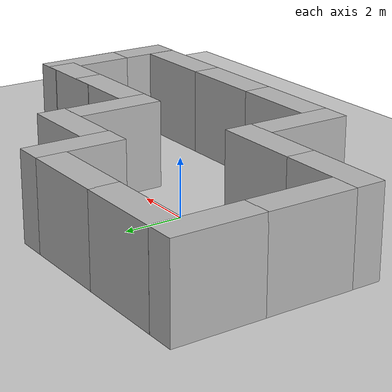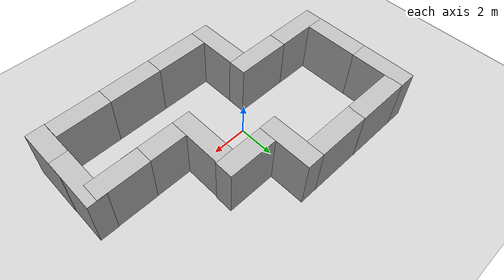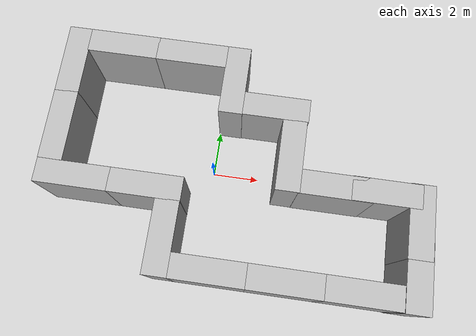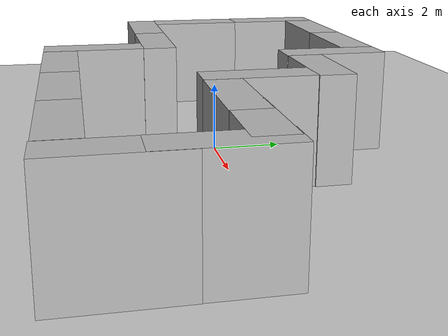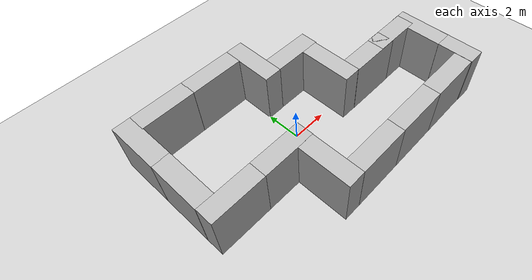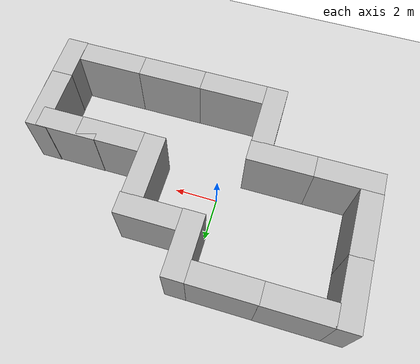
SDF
<sdf version="1.7">
 <world name="default">
  <light name="sun" type="directional">
   <pose>0 0 10 0 -0 0</pose>
   <diffuse>0.8 0.8 0.8 1</diffuse>
   <specular>0.2 0.2 0.2 1</specular>
   <attenuation>
    <range>1000</range>
    <constant>0.9</constant>
    <linear>0.01</linear>
    <quadratic>0.001</quadratic>
   </attenuation>
   <direction>-0.5 0.1 -0.9</direction>
   <spot><inner_angle>0</inner_angle><outer_angle>0</outer_angle><falloff>0</falloff></spot>
  </light>
  <plugin name="ActorPosesPlugin" filename="libActorPosesPlugin.so"/>
  <model name="ground_plane">
   <static>1</static>
   <link name="link">
    <collision name="collision">
     <geometry><plane><normal>0 0 1</normal><size>100 100</size></plane></geometry>
     <surface><friction><ode><mu>100</mu><mu2>50</mu2></ode></friction></surface>
    </collision>
    <visual name="visual">
     <cast_shadows>0</cast_shadows>
     <geometry><plane><normal>0 0 1</normal><size>100 100</size></plane></geometry>
     <material>
      <script><uri>file://media/materials/scripts/gazebo.material</uri><name>Gazebo/Grey</name></script>
     </material>
    </visual>
   </link>
  </model>
  <gravity>0 0 -9.8</gravity>
  <magnetic_field>6e-06 2.3e-05 -4.2e-05</magnetic_field>
  <atmosphere type="adiabatic"/>
  <physics name="default_physics" default="0" type="ode">
   <max_step_size>0.001</max_step_size>
   <real_time_factor>1</real_time_factor>
   <real_time_update_rate>1000</real_time_update_rate>
  </physics>
  <scene><ambient>0.4 0.4 0.4 1</ambient><background>0.7 0.7 0.7 1</background><shadows>1</shadows></scene>
  <spherical_coordinates>
   <surface_model>EARTH_WGS84</surface_model>
   <latitude_deg>0</latitude_deg>
   <longitude_deg>0</longitude_deg>
   <elevation>0</elevation>
   <heading_deg>0</heading_deg>
  </spherical_coordinates>
  <model name="brick_box_3x1x3">
   <static>1</static>
   <link name="chassis">
    <pose>0 0 1.5 0 -0 0</pose>
    <collision name="collision"><geometry><box><size>3 1 3</size></box></geometry></collision>
    <visual name="visual">
     <geometry><mesh><uri>model://brick_box_3x1x3/meshes/simple_box.dae</uri><scale>3 1 3</scale></mesh></geometry>
     <material>
      <script>
       <uri>model://brick_box_3x1x3/materials/scripts</uri>
       <uri>model://brick_box_3x1x3/materials/textures</uri>
       <name>BrickBox/Diffuse</name>
      </script>
     </material>
    </visual>
   </link>
   <pose>0.517229 -4.49586 0 0 -0 0</pose>
  </model>
  <model name="brick_box_3x1x3_0">
   <static>1</static>
   <link name="chassis">
    <pose>0 0 1.5 0 -0 0</pose>
    <collision name="collision"><geometry><box><size>3 1 3</size></box></geometry></collision>
    <visual name="visual">
     <geometry><mesh><uri>model://brick_box_3x1x3/meshes/simple_box.dae</uri><scale>3 1 3</scale></mesh></geometry>
     <material>
      <script>
       <uri>model://brick_box_3x1x3/materials/scripts</uri>
       <uri>model://brick_box_3x1x3/materials/textures</uri>
       <name>BrickBox/Diffuse</name>
      </script>
     </material>
    </visual>
   </link>
   <pose>-2.45303 -1.51285 0 0 -0 0</pose>
  </model>
  <model name="brick_box_3x1x3_1">
   <static>1</static>
   <link name="chassis">
    <pose>0 0 1.5 0 -0 0</pose>
    <collision name="collision"><geometry><box><size>3 1 3</size></box></geometry></collision>
    <visual name="visual">
     <geometry><mesh><uri>model://brick_box_3x1x3/meshes/simple_box.dae</uri><scale>3 1 3</scale></mesh></geometry>
     <material>
      <script>
       <uri>model://brick_box_3x1x3/materials/scripts</uri>
       <uri>model://brick_box_3x1x3/materials/textures</uri>
       <name>BrickBox/Diffuse</name>
      </script>
     </material>
    </visual>
   </link>
   <pose>2.22127 2.47519 0 0 -0 0</pose>
  </model>
  <model name="brick_box_3x1x3_2">
   <static>1</static>
   <link name="chassis">
    <pose>0 0 1.5 0 -0 0</pose>
    <collision name="collision"><geometry><box><size>3 1 3</size></box></geometry></collision>
    <visual name="visual">
     <geometry><mesh><uri>model://brick_box_3x1x3/meshes/simple_box.dae</uri><scale>3 1 3</scale></mesh></geometry>
     <material>
      <script>
       <uri>model://brick_box_3x1x3/materials/scripts</uri>
       <uri>model://brick_box_3x1x3/materials/textures</uri>
       <name>BrickBox/Diffuse</name>
      </script>
     </material>
    </visual>
   </link>
   <pose>-1.52203 4.45965 0 0 -0 0</pose>
  </model>
  <model name="brick_box_3x1x3_3">
   <static>1</static>
   <link name="chassis">
    <pose>0 0 1.5 0 -0 0</pose>
    <collision name="collision"><geometry><box><size>3 1 3</size></box></geometry></collision>
    <visual name="visual">
     <geometry><mesh><uri>model://brick_box_3x1x3/meshes/simple_box.dae</uri><scale>3 1 3</scale></mesh></geometry>
     <material>
      <script>
       <uri>model://brick_box_3x1x3/materials/scripts</uri>
       <uri>model://brick_box_3x1x3/materials/textures</uri>
       <name>BrickBox/Diffuse</name>
      </script>
     </material>
    </visual>
   </link>
   <pose>-6.44963 3.46099 0 0 -0 1.57257</pose>
  </model>
  <model name="brick_box_3x1x3_4">
   <static>1</static>
   <link name="chassis">
    <pose>0 0 1.5 0 -0 0</pose>
    <collision name="collision"><geometry><box><size>3 1 3</size></box></geometry></collision>
    <visual name="visual">
     <geometry><mesh><uri>model://brick_box_3x1x3/meshes/simple_box.dae</uri><scale>3 1 3</scale></mesh></geometry>
     <material>
      <script>
       <uri>model://brick_box_3x1x3/materials/scripts</uri>
       <uri>model://brick_box_3x1x3/materials/textures</uri>
       <name>BrickBox/Diffuse</name>
      </script>
     </material>
    </visual>
   </link>
   <pose>-4.4903 4.46316 0 0 -0 0</pose>
  </model>
  <model name="brick_box_3x1x3_5">
   <static>1</static>
   <link name="chassis">
    <pose>0 0 1.5 0 -0 0</pose>
    <collision name="collision"><geometry><box><size>3 1 3</size></box></geometry></collision>
    <visual name="visual">
     <geometry><mesh><uri>model://brick_box_3x1x3/meshes/simple_box.dae</uri><scale>3 1 3</scale></mesh></geometry>
     <material>
      <script>
       <uri>model://brick_box_3x1x3/materials/scripts</uri>
       <uri>model://brick_box_3x1x3/materials/textures</uri>
       <name>BrickBox/Diffuse</name>
      </script>
     </material>
    </visual>
   </link>
   <pose>6.49915 -4.49556 0 0 -0 0</pose>
  </model>
  <model name="brick_box_3x1x3_6">
   <static>1</static>
   <link name="chassis">
    <pose>0 0 1.5 0 -0 0</pose>
    <collision name="collision"><geometry><box><size>3 1 3</size></box></geometry></collision>
    <visual name="visual">
     <geometry><mesh><uri>model://brick_box_3x1x3/meshes/simple_box.dae</uri><scale>3 1 3</scale></mesh></geometry>
     <material>
      <script>
       <uri>model://brick_box_3x1x3/materials/scripts</uri>
       <uri>model://brick_box_3x1x3/materials/textures</uri>
       <name>BrickBox/Diffuse</name>
      </script>
     </material>
    </visual>
   </link>
   <pose>-5.43987 -1.51354 0 0 -0 0</pose>
  </model>
  <model name="brick_box_3x1x3_7">
   <static>1</static>
   <link name="chassis">
    <pose>0 0 1.5 0 -0 0</pose>
    <collision name="collision"><geometry><box><size>3 1 3</size></box></geometry></collision>
    <visual name="visual">
     <geometry><mesh><uri>model://brick_box_3x1x3/meshes/simple_box.dae</uri><scale>3 1 3</scale></mesh></geometry>
     <material>
      <script>
       <uri>model://brick_box_3x1x3/materials/scripts</uri>
       <uri>model://brick_box_3x1x3/materials/textures</uri>
       <name>BrickBox/Diffuse</name>
      </script>
     </material>
    </visual>
   </link>
   <pose>3.50662 -4.49532 0 0 -0 0</pose>
  </model>
  <model name="brick_box_3x1x3_3_clone">
   <static>1</static>
   <link name="chassis">
    <pose>0 0 1.5 0 -0 0</pose>
    <collision name="collision"><geometry><box><size>3 1 3</size></box></geometry></collision>
    <visual name="visual">
     <geometry><mesh><uri>model://brick_box_3x1x3/meshes/simple_box.dae</uri><scale>3 1 3</scale></mesh></geometry>
     <material>
      <script>
       <uri>model://brick_box_3x1x3/materials/scripts</uri>
       <uri>model://brick_box_3x1x3/materials/textures</uri>
       <name>BrickBox/Diffuse</name>
      </script>
     </material>
    </visual>
   </link>
   <pose>-6.44378 0.482096 3e-06 -0.001926 1e-05 1.56943</pose>
  </model>
  <model name="brick_box_3x1x3_3_clone_clone_clone_2">
   <static>1</static>
   <link name="chassis">
    <pose>0 0 1.5 0 -0 0</pose>
    <collision name="collision"><geometry><box><size>3 1 3</size></box></geometry></collision>
    <visual name="visual">
     <geometry><mesh><uri>model://brick_box_3x1x3/meshes/simple_box.dae</uri><scale>3 1 3</scale></mesh></geometry>
     <material>
      <script>
       <uri>model://brick_box_3x1x3/materials/scripts</uri>
       <uri>model://brick_box_3x1x3/materials/textures</uri>
       <name>BrickBox/Diffuse</name>
      </script>
     </material>
    </visual>
   </link>
   <pose>8.50819 -1.49018 3e-06 -0.001926 1e-05 1.56943</pose>
  </model>
  <model name="brick_box_3x1x3_3_clone_clone_clone_3">
   <static>1</static>
   <link name="chassis">
    <pose>0 0 1.5 0 -0 0</pose>
    <collision name="collision"><geometry><box><size>3 1 3</size></box></geometry></collision>
    <visual name="visual">
     <geometry><mesh><uri>model://brick_box_3x1x3/meshes/simple_box.dae</uri><scale>3 1 3</scale></mesh></geometry>
     <material>
      <script>
       <uri>model://brick_box_3x1x3/materials/scripts</uri>
       <uri>model://brick_box_3x1x3/materials/textures</uri>
       <name>BrickBox/Diffuse</name>
      </script>
     </material>
    </visual>
   </link>
   <pose>8.51585 -3.51946 3e-06 -0.001926 1e-05 1.56943</pose>
  </model>
  <model name="brick_box_3x1x3_3_clone_clone">
   <static>1</static>
   <link name="chassis">
    <pose>0 0 1.5 0 -0 0</pose>
    <collision name="collision"><geometry><box><size>3 1 3</size></box></geometry></collision>
    <visual name="visual">
     <geometry><mesh><uri>model://brick_box_3x1x3/meshes/simple_box.dae</uri><scale>3 1 3</scale></mesh></geometry>
     <material>
      <script>
       <uri>model://brick_box_3x1x3/materials/scripts</uri>
       <uri>model://brick_box_3x1x3/materials/textures</uri>
       <name>BrickBox/Diffuse</name>
      </script>
     </material>
    </visual>
   </link>
   <pose>-1.46404 -3.49226 3e-06 -0.001926 1e-05 1.56943</pose>
  </model>
  <model name="brick_box_3x1x3_3_clone_clone_0">
   <static>1</static>
   <link name="chassis">
    <pose>0 0 1.5 0 -0 0</pose>
    <collision name="collision"><geometry><box><size>3 1 3</size></box></geometry></collision>
    <visual name="visual">
     <geometry><mesh><uri>model://brick_box_3x1x3/meshes/simple_box.dae</uri><scale>3 1 3</scale></mesh></geometry>
     <material>
      <script>
       <uri>model://brick_box_3x1x3/materials/scripts</uri>
       <uri>model://brick_box_3x1x3/materials/textures</uri>
       <name>BrickBox/Diffuse</name>
      </script>
     </material>
    </visual>
   </link>
   <pose>3.1782 0.489809 3e-06 -0.001926 1e-05 1.56943</pose>
  </model>
  <model name="brick_box_3x1x3_3_clone_clone_1">
   <static>1</static>
   <link name="chassis">
    <pose>0 0 1.5 0 -0 0</pose>
    <collision name="collision"><geometry><box><size>3 1 3</size></box></geometry></collision>
    <visual name="visual">
     <geometry><mesh><uri>model://brick_box_3x1x3/meshes/simple_box.dae</uri><scale>3 1 3</scale></mesh></geometry>
     <material>
      <script>
       <uri>model://brick_box_3x1x3/materials/scripts</uri>
       <uri>model://brick_box_3x1x3/materials/textures</uri>
       <name>BrickBox/Diffuse</name>
      </script>
     </material>
    </visual>
   </link>
   <pose>0.466559 3.45891 3e-06 -0.001926 1e-05 1.56943</pose>
  </model>
  <model name="brick_box_3x1x3_1_clone">
   <static>1</static>
   <link name="chassis">
    <pose>0 0 1.5 0 -0 0</pose>
    <collision name="collision"><geometry><box><size>3 1 3</size></box></geometry></collision>
    <visual name="visual">
     <geometry><mesh><uri>model://brick_box_3x1x3/meshes/simple_box.dae</uri><scale>3 1 3</scale></mesh></geometry>
     <material>
      <script>
       <uri>model://brick_box_3x1x3/materials/scripts</uri>
       <uri>model://brick_box_3x1x3/materials/textures</uri>
       <name>BrickBox/Diffuse</name>
      </script>
     </material>
    </visual>
   </link>
   <pose>5.10444 -0.522986 0 0 -0 0</pose>
  </model>
  <model name="brick_box_3x1x3_1_clone_clone">
   <static>1</static>
   <link name="chassis">
    <pose>0 0 1.5 0 -0 0</pose>
    <collision name="collision"><geometry><box><size>3 1 3</size></box></geometry></collision>
    <visual name="visual">
     <geometry><mesh><uri>model://brick_box_3x1x3/meshes/simple_box.dae</uri><scale>3 1 3</scale></mesh></geometry>
     <material>
      <script>
       <uri>model://brick_box_3x1x3/materials/scripts</uri>
       <uri>model://brick_box_3x1x3/materials/textures</uri>
       <name>BrickBox/Diffuse</name>
      </script>
     </material>
    </visual>
   </link>
   <pose>7.20871 -0.509631 0 0 -0 0</pose>
  </model>
 </world>
</sdf>
